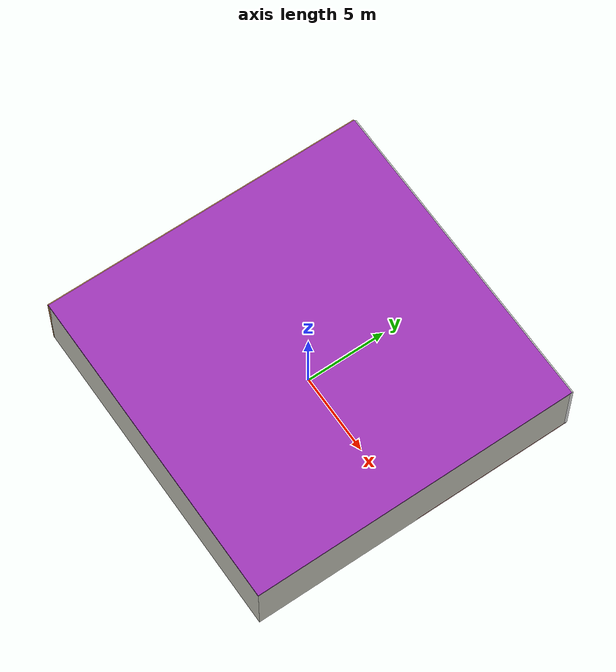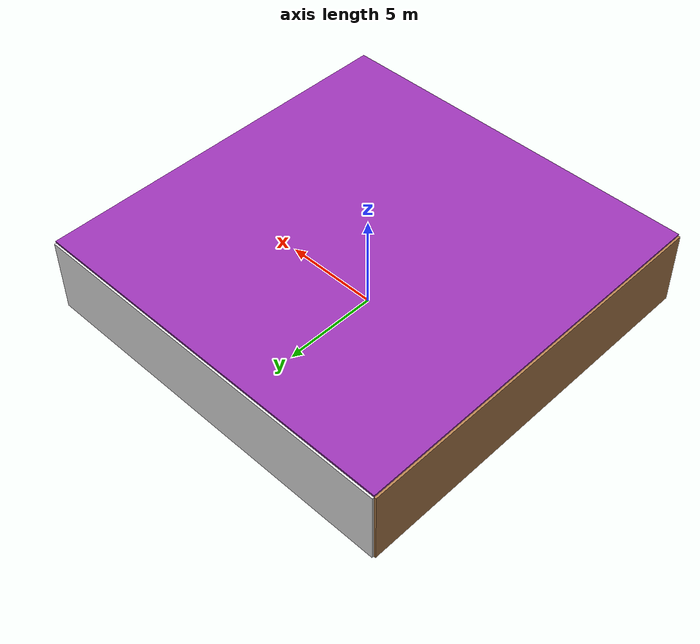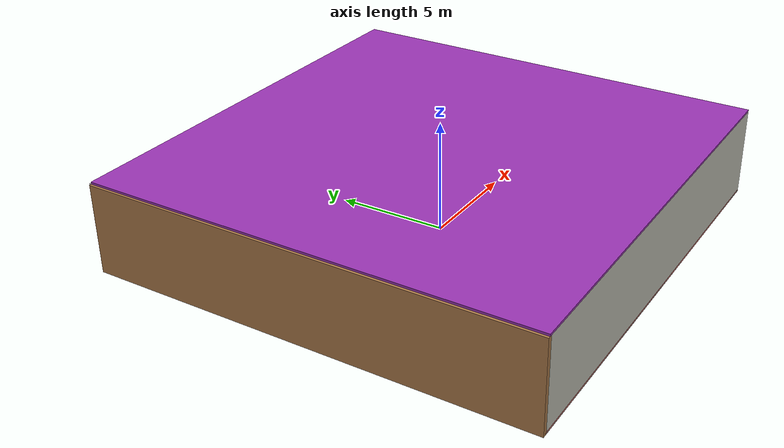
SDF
<sdf version="1.4">
 <world name="default">
  <physics type="ode">
   <max_step_size>0.001</max_step_size>
   <real_time_factor>1</real_time_factor>
   <real_time_update_rate>1000</real_time_update_rate>
   <gravity>0 0 -9.8</gravity>
  </physics>
  <scene><ambient>0.4 0.4 0.4 1</ambient><background>0.7 0.7 0.7 1</background><shadows>1</shadows></scene>
  <model name="Surrounding">
   <static>1</static>
   <link name="Ceiling">
    <collision name="Ceiling_Collision"><geometry><box><size>20 20 0.1</size></box></geometry></collision>
    <visual name="Ceiling_Visual">
     <geometry><box><size>20 20 0.1</size></box></geometry>
     <material>
      <script><uri>file://media/materials/scripts/gazebo.material</uri><name>Gazebo/PurpleGlow</name></script>
     </material>
    </visual>
    <pose>0 0 4.05 0 0 0</pose>
   </link>
   <link name="Wall_South">
    <collision name="Wall_South_Collision">
     <geometry><box><size>20 0 4</size></box></geometry>
     <pose>0 0 2 0 -0 0</pose>
    </collision>
    <visual name="Wall_South_Visual">
     <pose>0 0 2 0 -0 0</pose>
     <geometry><box><size>20 0 4</size></box></geometry>
     <material>
      <script><uri>file://media/materials/scripts/gazebo.material</uri><name>Gazebo/PaintedWall</name></script>
     </material>
    </visual>
    <velocity_decay><linear>0</linear><angular>0</angular></velocity_decay>
    <pose>0 -10 0 0 -0 0</pose>
   </link>
   <link name="Wall_East">
    <collision name="Wall_21_Collision">
     <geometry><box><size>20 0 4</size></box></geometry>
     <pose>0 0 2 0 -0 0</pose>
    </collision>
    <visual name="Wall_21_Visual">
     <pose>0 0 2 0 -0 0</pose>
     <geometry><box><size>20 0 4</size></box></geometry>
     <material>
      <script><uri>file://media/materials/scripts/gazebo.material</uri><name>Gazebo/PaintedWall</name></script>
     </material>
    </visual>
    <velocity_decay><linear>0</linear><angular>0</angular></velocity_decay>
    <pose>10 0 0 0 -0 1.5708</pose>
   </link>
   <link name="Wall_North">
    <collision name="Wall_22_Collision">
     <geometry><box><size>20 0.2 4</size></box></geometry>
     <pose>0 0 2 0 -0 0</pose>
    </collision>
    <visual name="Wall_22_Visual">
     <pose>0 0 2 0 -0 0</pose>
     <geometry><box><size>20 0.2 4</size></box></geometry>
     <material>
      <script><uri>file://media/materials/scripts/gazebo.material</uri><name>Gazebo/WhiteGlow</name></script>
     </material>
    </visual>
    <velocity_decay><linear>0</linear><angular>0</angular></velocity_decay>
    <pose>0 10 0 0 -0 0</pose>
   </link>
   <link name="Wall_West">
    <collision name="Wall_23_Collision">
     <geometry><box><size>20 0.2 4</size></box></geometry>
     <pose>0 0 2 0 -0 0</pose>
    </collision>
    <visual name="Wall_23_Visual">
     <pose>0 0 2 0 -0 0</pose>
     <geometry><box><size>20 0.2 4</size></box></geometry>
     <material>
      <script><uri>file://media/materials/scripts/gazebo.material</uri><name>Gazebo/WoodFloor</name></script>
     </material>
    </visual>
    <velocity_decay><linear>0</linear><angular>0</angular></velocity_decay>
    <pose>-10 0 0 0 0 -1.5708</pose>
   </link>
   <link name="Ground_link">
    <collision name="collision">
     <pose>0 0 .05 0 -0 0</pose>
     <geometry><box><size>20 20 0.1</size></box></geometry>
    </collision>
    <visual name="visual">
     <pose>0 0 .05 0 -0 0</pose>
     <geometry><box><size>20 20 0.1</size></box></geometry>
     <material>
      <script><uri>file://media/materials/scripts/gazebo.material</uri><name>Gazebo/RedTransparent</name></script>
     </material>
    </visual>
   </link>
   <static>1</static>
  </model>
  <spherical_coordinates>
   <surface_model>EARTH_WGS84</surface_model>
   <latitude_deg>0</latitude_deg>
   <longitude_deg>0</longitude_deg>
   <elevation>0</elevation>
   <heading_deg>0</heading_deg>
  </spherical_coordinates>
  <light name="lightball_0" type="diffuse">
   <diffuse>0.8 0.8 0.8 1</diffuse>
   <specular>0.2 0.2 0.2 1</specular>
   <attenuation>
    <range>100</range>
    <constant>0.7</constant>
    <linear>0.01</linear>
    <quadratic>0.001</quadratic>
   </attenuation>
   <direction>-0.5 0.1 -0.9</direction>
   <pose>3.8154141217 -6.8868764304 2.90840201226 0 0 0</pose>
  </light>
  <include><uri>model://table</uri><pose>-8.10872696806 -7.26612180753 0 0 0 2.52576073575</pose></include>
  <include>
   <uri>model://textured_shapes</uri>
   <pose>-7.33243245064 4.77105203502 0 0 0 2.93960073663</pose>
  </include>
  <include>
   <uri>model://construction_cone</uri>
   <pose>-8.04430017325 7.46564992224 0 0 0 2.0969293554</pose>
  </include>
  <include>
   <uri>model://textured_shapes</uri>
   <pose>-4.57270935499 -1.76902729011 0 0 0 1.7635488972</pose>
  </include>
 </world>
</sdf>

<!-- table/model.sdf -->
<sdf version="1.5">
  <model name="table">
    <static>true</static>
    <link name="link">
      <collision name="surface">
        <pose>0 0 1.0 0 0 0</pose>
        <geometry>
          <box>
            <size>1.5 0.8 0.03</size>
          </box>
        </geometry>
        <surface>
          <friction>
            <ode>
              <mu>0.6</mu>
              <mu2>0.6</mu2>
            </ode>
          </friction>
        </surface>
      </collision>
      <visual name="visual1">
        <pose>0 0 1.0 0 0 0</pose>
        <geometry>
          <box>
            <size>1.5 0.8 0.03</size>
          </box>
        </geometry>
        <material>
          <script>
            <uri>model://media/materials/scripts/gazebo.material</uri>
            <name>Gazebo/Wood</name>
          </script>
        </material>
      </visual>
      <collision name="front_left_leg">
        <pose>0.68 0.38 0.5 0 0 0</pose>
        <geometry>
          <cylinder>
            <radius>0.02</radius>
            <length>1.0</length>
          </cylinder>
        </geometry>
      </collision>
      <visual name="front_left_leg">
        <pose>0.68 0.38 0.5 0 0 0</pose>
        <geometry>
          <cylinder>
            <radius>0.02</radius>
            <length>1.0</length>
          </cylinder>
        </geometry>
        <material>
          <script>
            <uri>model://media/materials/scripts/gazebo.material</uri>
            <name>Gazebo/Grey</name>
          </script>
        </material>
      </visual>
      <collision name="front_right_leg">
        <pose>0.68 -0.38 0.5 0 0 0</pose>
        <geometry>
          <cylinder>
            <radius>0.02</radius>
            <length>1.0</length>
          </cylinder>
        </geometry>
      </collision>
      <visual name="front_right_leg">
        <pose>0.68 -0.38 0.5 0 0 0</pose>
        <geometry>
          <cylinder>
            <radius>0.02</radius>
            <length>1.0</length>
          </cylinder>
        </geometry>
        <material>
          <script>
            <uri>model://media/materials/scripts/gazebo.material</uri>
            <name>Gazebo/Grey</name>
          </script>
        </material>
      </visual>
      <collision name="back_right_leg">
        <pose>-0.68 -0.38 0.5 0 0 0</pose>
        <geometry>
          <cylinder>
            <radius>0.02</radius>
            <length>1.0</length>
          </cylinder>
        </geometry>
      </collision>
      <visual name="back_right_leg">
        <pose>-0.68 -0.38 0.5 0 0 0</pose>
        <geometry>
          <cylinder>
            <radius>0.02</radius>
            <length>1.0</length>
          </cylinder>
        </geometry>
        <material>
          <script>
            <uri>model://media/materials/scripts/gazebo.material</uri>
            <name>Gazebo/Grey</name>
          </script>
        </material>
      </visual>
      <collision name="back_left_leg">
        <pose>-0.68 0.38 0.5 0 0 0</pose>
        <geometry>
          <cylinder>
            <radius>0.02</radius>
            <length>1.0</length>
          </cylinder>
        </geometry>
      </collision>
      <visual name="back_left_leg">
        <pose>-0.68 0.38 0.5 0 0 0</pose>
        <geometry>
          <cylinder>
            <radius>0.02</radius>
            <length>1.0</length>
          </cylinder>
        </geometry>
        <material>
          <script>
            <uri>model://media/materials/scripts/gazebo.material</uri>
            <name>Gazebo/Grey</name>
          </script>
        </material>
      </visual>
    </link>
  </model>
</sdf>

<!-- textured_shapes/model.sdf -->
<sdf version="1.6">
  <model name="textured_shapes">
    <pose>0 0 0.5 0 0 0</pose>
    <link name="box">
      <pose>0 -1.5 0 0 0 0</pose>
      <collision name="collision">
        <geometry>
          <box>
            <size>1 1 1</size>
          </box>
        </geometry>
      </collision>
      <visual name="visual">
        <geometry>
          <box>
            <size>1 1 1</size>
          </box>
        </geometry>
        <material>
          <script>
            <uri>model://../model_source/models/textured_shapes/materials/scripts</uri>
            <uri>model://../model_source/models/textured_shapes/materials/textures</uri>
            <name>TexturedShape/Squares</name>
          </script>
        </material>
      </visual>
    </link>
    <link name="sphere">
      <collision name="collision">
        <geometry>
          <sphere>
            <radius>0.5</radius>
          </sphere>
        </geometry>
      </collision>
      <visual name="visual">
        <geometry>
          <sphere>
            <radius>0.5</radius>
          </sphere>
        </geometry>
        <material>
          <script>
            <uri>model://../model_source/models/textured_shapes/materials/scripts</uri>
            <uri>model://../model_source/models/textured_shapes/materials/textures</uri>
            <name>TexturedShape/Squares</name>
          </script>
        </material>
      </visual>
    </link>
    <link name="cylinder">
      <pose>0 1.5 0 0 0 0</pose>
      <collision name="collision">
        <geometry>
          <cylinder>
            <radius>0.5</radius>
            <length>1</length>
          </cylinder>
        </geometry>
      </collision>
      <visual name="visual">
        <geometry>
          <cylinder>
            <radius>0.5</radius>
            <length>1</length>
          </cylinder>
        </geometry>
        <material>
          <script>
            <uri>model://../model_source/models/textured_shapes/materials/scripts</uri>
            <uri>model://../model_source/models/textured_shapes/materials/textures</uri>
            <name>TexturedShape/Squares</name>
          </script>
        </material>
      </visual>
    </link>
  </model>
</sdf>

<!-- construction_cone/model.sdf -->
<sdf version="1.5">
  <model name="Construction Cone">
    <link name="link">
      <collision name="collision">
        <geometry>
          <mesh>
            <scale>10 10 10</scale>
            <uri>file://isr-testbed/construction_cone/meshes/construction_cone.dae</uri>
          </mesh>
        </geometry>
      </collision>
      <visual name="visual">
        <geometry>
          <mesh>
            <scale>10 10 10</scale>
            <uri>file://isr-testbed/construction_cone/meshes/construction_cone.dae</uri>
          </mesh>
        </geometry>
      </visual>
    </link>
  </model>
</sdf>
